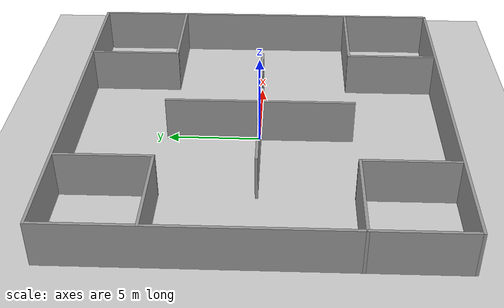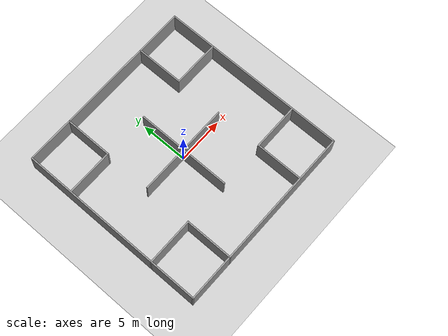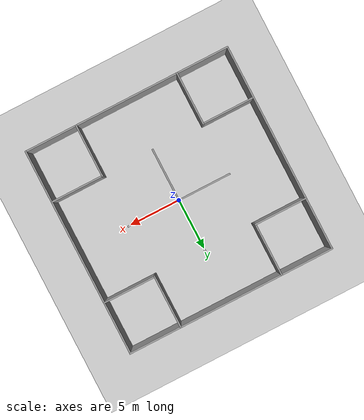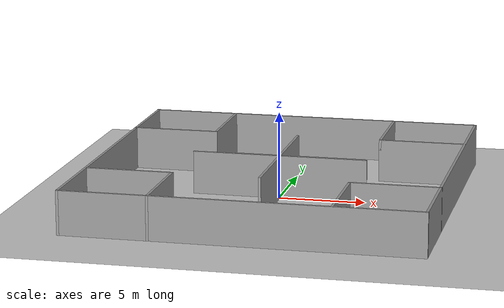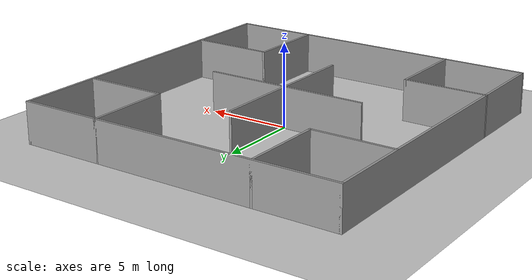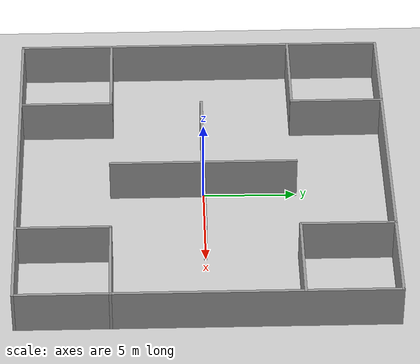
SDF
<?xml version='1.0'?>
<sdf version='1.7'>
  <world name='default'>
    <!-- Sun -->
    <include>
      <uri>model://sun</uri>
    </include>

    <!-- Ground Plane -->
    <include>
      <uri>model://ground_plane</uri>
    </include>

    <!-- Walls -->
    <model name='racetrack'>
      <pose>0 0 0 0 0 0</pose>
      <static>true</static>

      <link name='Wall_0'>
        <collision name='Wall_0_Collision'>
          <geometry>
            <box>
              <size>10.15 0.15 2.5</size>
            </box>
          </geometry>
          <pose>0 0 1.25 0 -0 0</pose>
        </collision>
        <visual name='Wall_0_Visual'>
          <pose>0 0 1.25 0 -0 0</pose>
          <geometry>
            <box>
              <size>10.15 0.15 2.5</size>
            </box>
          </geometry>
          <material>
            <script>
              <uri>file://media/materials/scripts/gazebo.material</uri>
              <name>Gazebo/Grey</name>
            </script>
            <ambient>1 1 1 1</ambient>
          </material>
          <meta>
            <layer>0</layer>
          </meta>
        </visual>
        <pose>0 0 0 0 -0 0</pose>
      </link>
      <link name='Wall_10'>
        <collision name='Wall_10_Collision'>
          <geometry>
            <box>
              <size>5.15 0.15 2.5</size>
            </box>
          </geometry>
          <pose>0 0 1.25 0 -0 0</pose>
        </collision>
        <visual name='Wall_10_Visual'>
          <pose>0 0 1.25 0 -0 0</pose>
          <geometry>
            <box>
              <size>5.15 0.15 2.5</size>
            </box>
          </geometry>
          <material>
            <script>
              <uri>file://media/materials/scripts/gazebo.material</uri>
              <name>Gazebo/Grey</name>
            </script>
            <ambient>1 1 1 1</ambient>
          </material>
          <meta>
            <layer>0</layer>
          </meta>
        </visual>
        <pose>-5 -7.5 0 0 -0 -1.5708</pose>
      </link>
      <link name='Wall_12'>
        <collision name='Wall_12_Collision'>
          <geometry>
            <box>
              <size>5.15 0.15 2.5</size>
            </box>
          </geometry>
          <pose>0 0 1.25 0 -0 0</pose>
        </collision>
        <visual name='Wall_12_Visual'>
          <pose>0 0 1.25 0 -0 0</pose>
          <geometry>
            <box>
              <size>5.15 0.15 2.5</size>
            </box>
          </geometry>
          <material>
            <script>
              <uri>file://media/materials/scripts/gazebo.material</uri>
              <name>Gazebo/Grey</name>
            </script>
            <ambient>1 1 1 1</ambient>
          </material>
          <meta>
            <layer>0</layer>
          </meta>
        </visual>
        <pose>5 -7.5 0 0 -0 1.5708</pose>
      </link>
      <link name='Wall_13'>
        <collision name='Wall_13_Collision'>
          <geometry>
            <box>
              <size>5.15 0.15 2.5</size>
            </box>
          </geometry>
          <pose>0 0 1.25 0 -0 0</pose>
        </collision>
        <visual name='Wall_13_Visual'>
          <pose>0 0 1.25 0 -0 0</pose>
          <geometry>
            <box>
              <size>5.15 0.15 2.5</size>
            </box>
          </geometry>
          <material>
            <script>
              <uri>file://media/materials/scripts/gazebo.material</uri>
              <name>Gazebo/Grey</name>
            </script>
            <ambient>1 1 1 1</ambient>
          </material>
          <meta>
            <layer>0</layer>
          </meta>
        </visual>
        <pose>7.5 -5 0 0 -0 0</pose>
      </link>
      <link name='Wall_15'>
        <collision name='Wall_15_Collision'>
          <geometry>
            <box>
              <size>5.15 0.15 2.5</size>
            </box>
          </geometry>
          <pose>0 0 1.25 0 -0 0</pose>
        </collision>
        <visual name='Wall_15_Visual'>
          <pose>0 0 1.25 0 -0 0</pose>
          <geometry>
            <box>
              <size>5.15 0.15 2.5</size>
            </box>
          </geometry>
          <material>
            <script>
              <uri>file://media/materials/scripts/gazebo.material</uri>
              <name>Gazebo/Grey</name>
            </script>
            <ambient>1 1 1 1</ambient>
          </material>
          <meta>
            <layer>0</layer>
          </meta>
        </visual>
        <pose>-7.5 5 0 0 -0 0</pose>
      </link>
      <link name='Wall_16'>
        <collision name='Wall_16_Collision'>
          <geometry>
            <box>
              <size>5.15 0.15 2.5</size>
            </box>
          </geometry>
          <pose>0 0 1.25 0 -0 0</pose>
        </collision>
        <visual name='Wall_16_Visual'>
          <pose>0 0 1.25 0 -0 0</pose>
          <geometry>
            <box>
              <size>5.15 0.15 2.5</size>
            </box>
          </geometry>
          <material>
            <script>
              <uri>file://media/materials/scripts/gazebo.material</uri>
              <name>Gazebo/Grey</name>
            </script>
            <ambient>1 1 1 1</ambient>
          </material>
          <meta>
            <layer>0</layer>
          </meta>
        </visual>
        <pose>-5 7.5 0 0 -0 1.5708</pose>
      </link>
      <link name='Wall_18'>
        <collision name='Wall_18_Collision'>
          <geometry>
            <box>
              <size>5.15 0.15 2.5</size>
            </box>
          </geometry>
          <pose>0 0 1.25 0 -0 0</pose>
        </collision>
        <visual name='Wall_18_Visual'>
          <pose>0 0 1.25 0 -0 0</pose>
          <geometry>
            <box>
              <size>5.15 0.15 2.5</size>
            </box>
          </geometry>
          <material>
            <script>
              <uri>file://media/materials/scripts/gazebo.material</uri>
              <name>Gazebo/Grey</name>
            </script>
            <ambient>1 1 1 1</ambient>
          </material>
          <meta>
            <layer>0</layer>
          </meta>
        </visual>
        <pose>5 7.5 0 0 -0 -1.5708</pose>
      </link>
      <link name='Wall_19'>
        <collision name='Wall_19_Collision'>
          <geometry>
            <box>
              <size>5.15 0.15 2.5</size>
            </box>
          </geometry>
          <pose>0 0 1.25 0 -0 0</pose>
        </collision>
        <visual name='Wall_19_Visual'>
          <pose>0 0 1.25 0 -0 0</pose>
          <geometry>
            <box>
              <size>5.15 0.15 2.5</size>
            </box>
          </geometry>
          <material>
            <script>
              <uri>file://media/materials/scripts/gazebo.material</uri>
              <name>Gazebo/Grey</name>
            </script>
            <ambient>1 1 1 1</ambient>
          </material>
          <meta>
            <layer>0</layer>
          </meta>
        </visual>
        <pose>7.5 5 0 0 -0 0</pose>
      </link>
      <link name='Wall_2'>
        <collision name='Wall_2_Collision'>
          <geometry>
            <box>
              <size>10.15 0.15 2.5</size>
            </box>
          </geometry>
          <pose>0 0 1.25 0 -0 0</pose>
        </collision>
        <visual name='Wall_2_Visual'>
          <pose>0 0 1.25 0 -0 0</pose>
          <geometry>
            <box>
              <size>10.15 0.15 2.5</size>
            </box>
          </geometry>
          <material>
            <script>
              <uri>file://media/materials/scripts/gazebo.material</uri>
              <name>Gazebo/Grey</name>
            </script>
            <ambient>1 1 1 1</ambient>
          </material>
          <meta>
            <layer>0</layer>
          </meta>
        </visual>
        <pose>0 0 0 0 -0 -1.5708</pose>
      </link>
      <link name='Wall_4'>
        <collision name='Wall_4_Collision'>
          <geometry>
            <box>
              <size>20.15 0.15 2.5</size>
            </box>
          </geometry>
          <pose>0 0 1.25 0 -0 0</pose>
        </collision>
        <visual name='Wall_4_Visual'>
          <pose>0 0 1.25 0 -0 0</pose>
          <geometry>
            <box>
              <size>20.15 0.15 2.5</size>
            </box>
          </geometry>
          <material>
            <script>
              <uri>file://media/materials/scripts/gazebo.material</uri>
              <name>Gazebo/Grey</name>
            </script>
            <ambient>1 1 1 1</ambient>
          </material>
          <meta>
            <layer>0</layer>
          </meta>
        </visual>
        <pose>0 10 0 0 -0 0</pose>
      </link>
      <link name='Wall_5'>
        <collision name='Wall_5_Collision'>
          <geometry>
            <box>
              <size>20.15 0.15 2.5</size>
            </box>
          </geometry>
          <pose>0 0 1.25 0 -0 0</pose>
        </collision>
        <visual name='Wall_5_Visual'>
          <pose>0 0 1.25 0 -0 0</pose>
          <geometry>
            <box>
              <size>20.15 0.15 2.5</size>
            </box>
          </geometry>
          <material>
            <script>
              <uri>file://media/materials/scripts/gazebo.material</uri>
              <name>Gazebo/Grey</name>
            </script>
            <ambient>1 1 1 1</ambient>
          </material>
          <meta>
            <layer>0</layer>
          </meta>
        </visual>
        <pose>10 0 0 0 -0 -1.5708</pose>
      </link>
      <link name='Wall_6'>
        <collision name='Wall_6_Collision'>
          <geometry>
            <box>
              <size>20.15 0.15 2.5</size>
            </box>
          </geometry>
          <pose>0 0 1.25 0 -0 0</pose>
        </collision>
        <visual name='Wall_6_Visual'>
          <pose>0 0 1.25 0 -0 0</pose>
          <geometry>
            <box>
              <size>20.15 0.15 2.5</size>
            </box>
          </geometry>
          <material>
            <script>
              <uri>file://media/materials/scripts/gazebo.material</uri>
              <name>Gazebo/Grey</name>
            </script>
            <ambient>1 1 1 1</ambient>
          </material>
          <meta>
            <layer>0</layer>
          </meta>
        </visual>
        <pose>0 -10 0 0 -0 3.14159</pose>
      </link>
      <link name='Wall_7'>
        <collision name='Wall_7_Collision'>
          <geometry>
            <box>
              <size>20.15 0.15 2.5</size>
            </box>
          </geometry>
          <pose>0 0 1.25 0 -0 0</pose>
        </collision>
        <visual name='Wall_7_Visual'>
          <pose>0 0 1.25 0 -0 0</pose>
          <geometry>
            <box>
              <size>20.15 0.15 2.5</size>
            </box>
          </geometry>
          <material>
            <script>
              <uri>file://media/materials/scripts/gazebo.material</uri>
              <name>Gazebo/Grey</name>
            </script>
            <ambient>1 1 1 1</ambient>
          </material>
          <meta>
            <layer>0</layer>
          </meta>
        </visual>
        <pose>-10 0 0 0 -0 1.5708</pose>
      </link>
      <link name='Wall_9'>
        <collision name='Wall_9_Collision'>
          <geometry>
            <box>
              <size>5.15 0.15 2.5</size>
            </box>
          </geometry>
          <pose>0 0 1.25 0 -0 0</pose>
        </collision>
        <visual name='Wall_9_Visual'>
          <pose>0 0 1.25 0 -0 0</pose>
          <geometry>
            <box>
              <size>5.15 0.15 2.5</size>
            </box>
          </geometry>
          <material>
            <script>
              <uri>file://media/materials/scripts/gazebo.material</uri>
              <name>Gazebo/Grey</name>
            </script>
            <ambient>1 1 1 1</ambient>
          </material>
          <meta>
            <layer>0</layer>
          </meta>
        </visual>
        <pose>-7.5 -5 0 0 -0 0</pose>
      </link>
    </model>
    <gui>
      <camera name='user_camera'>
          <pose>0 0 40 3.14159 1.5708 0</pose>
        <view_controller>orbit</view_controller>
      </camera>
    </gui>
  </world>
</sdf>
